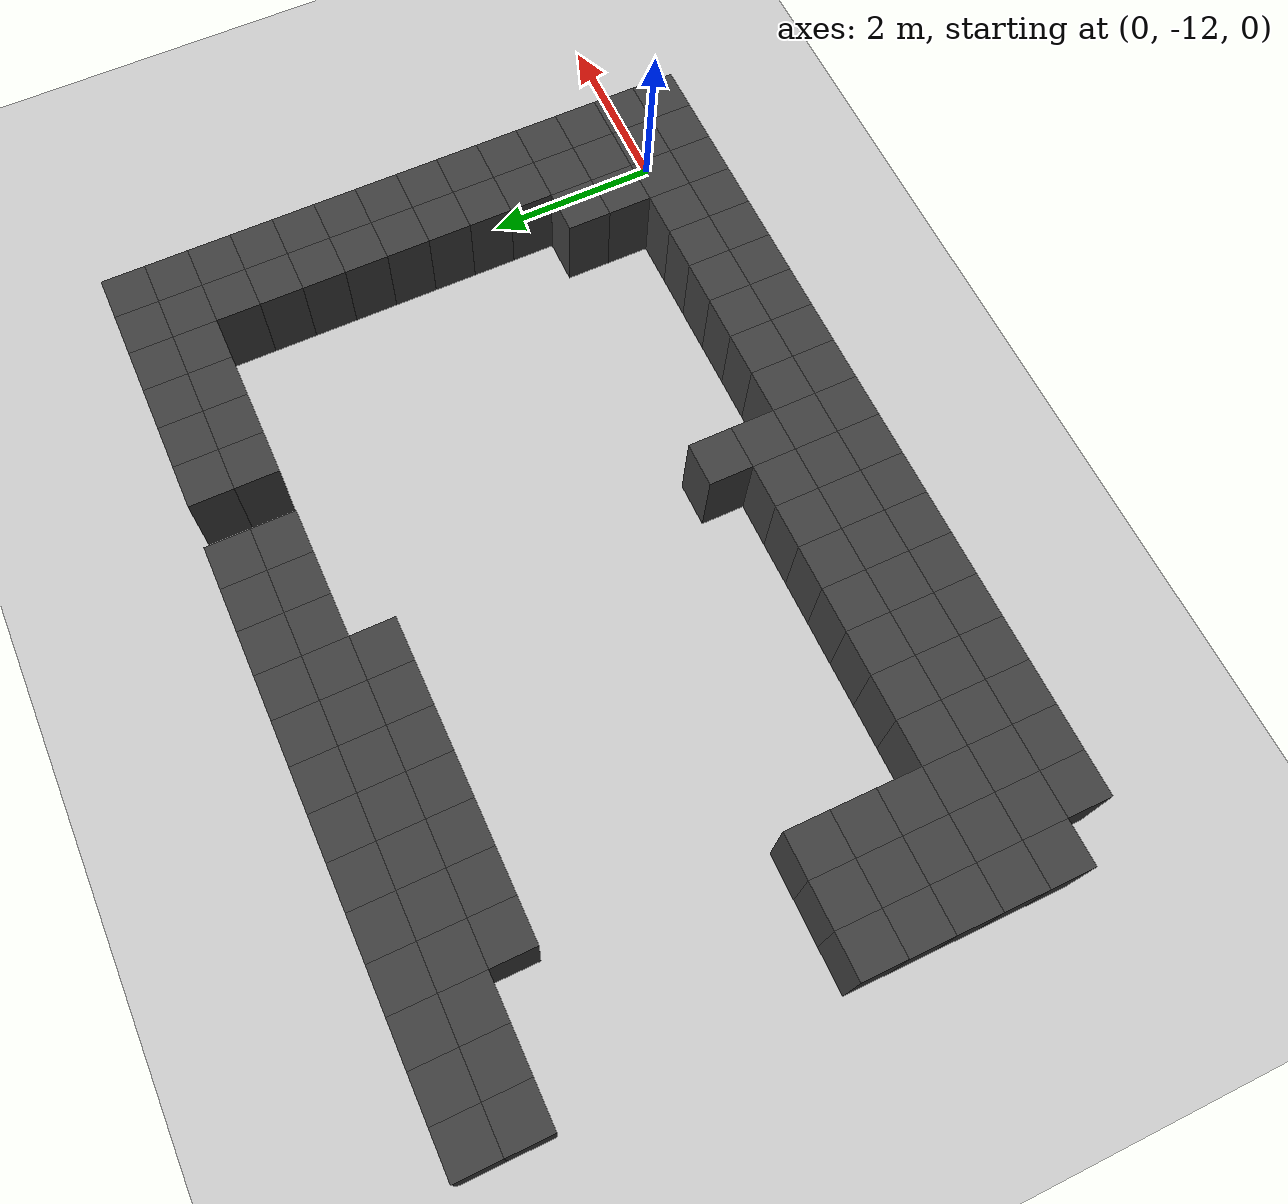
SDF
<sdf version="1.7">
 <world name="map_14980">
  <model name="ground_plane">
   <static>true</static>
   <link name="link">
    <collision name="collision">
     <geometry><plane><normal>0 0 1</normal><size>200 200</size></plane></geometry>
    </collision>
    <visual name="visual">
     <geometry><plane><normal>0 0 1</normal><size>200 200</size></plane></geometry>
     <material><ambient>0.8 0.8 0.8 1</ambient><diffuse>0.8 0.8 0.8 1</diffuse></material>
    </visual>
   </link>
  </model>
  <model name="maze_environment">
   <static>true</static>
   <link name="wall_1320">
    <pose>-9.250 -5.750 0.500 0 0 0</pose>
    <collision name="col"><geometry><box><size>0.5 0.5 1.0</size></box></geometry></collision>
    <visual name="vis">
     <geometry><box><size>0.5 0.5 1.0</size></box></geometry>
     <material><ambient>0.15 0.15 0.15 1</ambient><diffuse>0.25 0.25 0.25 1</diffuse></material>
    </visual>
   </link>
   <link name="wall_1321">
    <pose>-8.750 -5.750 0.500 0 0 0</pose>
    <collision name="col"><geometry><box><size>0.5 0.5 1.0</size></box></geometry></collision>
    <visual name="vis">
     <geometry><box><size>0.5 0.5 1.0</size></box></geometry>
     <material><ambient>0.15 0.15 0.15 1</ambient><diffuse>0.25 0.25 0.25 1</diffuse></material>
    </visual>
   </link>
   <link name="wall_1322">
    <pose>-8.250 -5.750 0.500 0 0 0</pose>
    <collision name="col"><geometry><box><size>0.5 0.5 1.0</size></box></geometry></collision>
    <visual name="vis">
     <geometry><box><size>0.5 0.5 1.0</size></box></geometry>
     <material><ambient>0.15 0.15 0.15 1</ambient><diffuse>0.25 0.25 0.25 1</diffuse></material>
    </visual>
   </link>
   <link name="wall_1323">
    <pose>-7.750 -5.750 0.500 0 0 0</pose>
    <collision name="col"><geometry><box><size>0.5 0.5 1.0</size></box></geometry></collision>
    <visual name="vis">
     <geometry><box><size>0.5 0.5 1.0</size></box></geometry>
     <material><ambient>0.15 0.15 0.15 1</ambient><diffuse>0.25 0.25 0.25 1</diffuse></material>
    </visual>
   </link>
   <link name="wall_1324">
    <pose>-7.250 -5.750 0.500 0 0 0</pose>
    <collision name="col"><geometry><box><size>0.5 0.5 1.0</size></box></geometry></collision>
    <visual name="vis">
     <geometry><box><size>0.5 0.5 1.0</size></box></geometry>
     <material><ambient>0.15 0.15 0.15 1</ambient><diffuse>0.25 0.25 0.25 1</diffuse></material>
    </visual>
   </link>
   <link name="wall_1325">
    <pose>-6.750 -5.750 0.500 0 0 0</pose>
    <collision name="col"><geometry><box><size>0.5 0.5 1.0</size></box></geometry></collision>
    <visual name="vis">
     <geometry><box><size>0.5 0.5 1.0</size></box></geometry>
     <material><ambient>0.15 0.15 0.15 1</ambient><diffuse>0.25 0.25 0.25 1</diffuse></material>
    </visual>
   </link>
   <link name="wall_1326">
    <pose>-6.250 -5.750 0.500 0 0 0</pose>
    <collision name="col"><geometry><box><size>0.5 0.5 1.0</size></box></geometry></collision>
    <visual name="vis">
     <geometry><box><size>0.5 0.5 1.0</size></box></geometry>
     <material><ambient>0.15 0.15 0.15 1</ambient><diffuse>0.25 0.25 0.25 1</diffuse></material>
    </visual>
   </link>
   <link name="wall_1327">
    <pose>-5.750 -5.750 0.500 0 0 0</pose>
    <collision name="col"><geometry><box><size>0.5 0.5 1.0</size></box></geometry></collision>
    <visual name="vis">
     <geometry><box><size>0.5 0.5 1.0</size></box></geometry>
     <material><ambient>0.15 0.15 0.15 1</ambient><diffuse>0.25 0.25 0.25 1</diffuse></material>
    </visual>
   </link>
   <link name="wall_1328">
    <pose>-5.250 -5.750 0.500 0 0 0</pose>
    <collision name="col"><geometry><box><size>0.5 0.5 1.0</size></box></geometry></collision>
    <visual name="vis">
     <geometry><box><size>0.5 0.5 1.0</size></box></geometry>
     <material><ambient>0.15 0.15 0.15 1</ambient><diffuse>0.25 0.25 0.25 1</diffuse></material>
    </visual>
   </link>
   <link name="wall_1329">
    <pose>-4.750 -5.750 0.500 0 0 0</pose>
    <collision name="col"><geometry><box><size>0.5 0.5 1.0</size></box></geometry></collision>
    <visual name="vis">
     <geometry><box><size>0.5 0.5 1.0</size></box></geometry>
     <material><ambient>0.15 0.15 0.15 1</ambient><diffuse>0.25 0.25 0.25 1</diffuse></material>
    </visual>
   </link>
   <link name="wall_1330">
    <pose>-4.250 -5.750 0.500 0 0 0</pose>
    <collision name="col"><geometry><box><size>0.5 0.5 1.0</size></box></geometry></collision>
    <visual name="vis">
     <geometry><box><size>0.5 0.5 1.0</size></box></geometry>
     <material><ambient>0.15 0.15 0.15 1</ambient><diffuse>0.25 0.25 0.25 1</diffuse></material>
    </visual>
   </link>
   <link name="wall_1331">
    <pose>-3.750 -5.750 0.500 0 0 0</pose>
    <collision name="col"><geometry><box><size>0.5 0.5 1.0</size></box></geometry></collision>
    <visual name="vis">
     <geometry><box><size>0.5 0.5 1.0</size></box></geometry>
     <material><ambient>0.15 0.15 0.15 1</ambient><diffuse>0.25 0.25 0.25 1</diffuse></material>
    </visual>
   </link>
   <link name="wall_1332">
    <pose>-3.250 -5.750 0.500 0 0 0</pose>
    <collision name="col"><geometry><box><size>0.5 0.5 1.0</size></box></geometry></collision>
    <visual name="vis">
     <geometry><box><size>0.5 0.5 1.0</size></box></geometry>
     <material><ambient>0.15 0.15 0.15 1</ambient><diffuse>0.25 0.25 0.25 1</diffuse></material>
    </visual>
   </link>
   <link name="wall_1333">
    <pose>-2.250 -5.750 0.500 0 0 0</pose>
    <collision name="col"><geometry><box><size>0.5 0.5 1.0</size></box></geometry></collision>
    <visual name="vis">
     <geometry><box><size>0.5 0.5 1.0</size></box></geometry>
     <material><ambient>0.15 0.15 0.15 1</ambient><diffuse>0.25 0.25 0.25 1</diffuse></material>
    </visual>
   </link>
   <link name="wall_1334">
    <pose>-1.750 -5.750 0.500 0 0 0</pose>
    <collision name="col"><geometry><box><size>0.5 0.5 1.0</size></box></geometry></collision>
    <visual name="vis">
     <geometry><box><size>0.5 0.5 1.0</size></box></geometry>
     <material><ambient>0.15 0.15 0.15 1</ambient><diffuse>0.25 0.25 0.25 1</diffuse></material>
    </visual>
   </link>
   <link name="wall_1335">
    <pose>-1.250 -5.750 0.500 0 0 0</pose>
    <collision name="col"><geometry><box><size>0.5 0.5 1.0</size></box></geometry></collision>
    <visual name="vis">
     <geometry><box><size>0.5 0.5 1.0</size></box></geometry>
     <material><ambient>0.15 0.15 0.15 1</ambient><diffuse>0.25 0.25 0.25 1</diffuse></material>
    </visual>
   </link>
   <link name="wall_1336">
    <pose>-0.750 -5.750 0.500 0 0 0</pose>
    <collision name="col"><geometry><box><size>0.5 0.5 1.0</size></box></geometry></collision>
    <visual name="vis">
     <geometry><box><size>0.5 0.5 1.0</size></box></geometry>
     <material><ambient>0.15 0.15 0.15 1</ambient><diffuse>0.25 0.25 0.25 1</diffuse></material>
    </visual>
   </link>
   <link name="wall_1337">
    <pose>-0.250 -5.750 0.500 0 0 0</pose>
    <collision name="col"><geometry><box><size>0.5 0.5 1.0</size></box></geometry></collision>
    <visual name="vis">
     <geometry><box><size>0.5 0.5 1.0</size></box></geometry>
     <material><ambient>0.15 0.15 0.15 1</ambient><diffuse>0.25 0.25 0.25 1</diffuse></material>
    </visual>
   </link>
   <link name="wall_1338">
    <pose>0.250 -5.750 0.500 0 0 0</pose>
    <collision name="col"><geometry><box><size>0.5 0.5 1.0</size></box></geometry></collision>
    <visual name="vis">
     <geometry><box><size>0.5 0.5 1.0</size></box></geometry>
     <material><ambient>0.15 0.15 0.15 1</ambient><diffuse>0.25 0.25 0.25 1</diffuse></material>
    </visual>
   </link>
   <link name="wall_1364">
    <pose>-9.250 -6.250 0.500 0 0 0</pose>
    <collision name="col"><geometry><box><size>0.5 0.5 1.0</size></box></geometry></collision>
    <visual name="vis">
     <geometry><box><size>0.5 0.5 1.0</size></box></geometry>
     <material><ambient>0.15 0.15 0.15 1</ambient><diffuse>0.25 0.25 0.25 1</diffuse></material>
    </visual>
   </link>
   <link name="wall_1365">
    <pose>-8.750 -6.250 0.500 0 0 0</pose>
    <collision name="col"><geometry><box><size>0.5 0.5 1.0</size></box></geometry></collision>
    <visual name="vis">
     <geometry><box><size>0.5 0.5 1.0</size></box></geometry>
     <material><ambient>0.15 0.15 0.15 1</ambient><diffuse>0.25 0.25 0.25 1</diffuse></material>
    </visual>
   </link>
   <link name="wall_1366">
    <pose>-8.250 -6.250 0.500 0 0 0</pose>
    <collision name="col"><geometry><box><size>0.5 0.5 1.0</size></box></geometry></collision>
    <visual name="vis">
     <geometry><box><size>0.5 0.5 1.0</size></box></geometry>
     <material><ambient>0.15 0.15 0.15 1</ambient><diffuse>0.25 0.25 0.25 1</diffuse></material>
    </visual>
   </link>
   <link name="wall_1367">
    <pose>-7.750 -6.250 0.500 0 0 0</pose>
    <collision name="col"><geometry><box><size>0.5 0.5 1.0</size></box></geometry></collision>
    <visual name="vis">
     <geometry><box><size>0.5 0.5 1.0</size></box></geometry>
     <material><ambient>0.15 0.15 0.15 1</ambient><diffuse>0.25 0.25 0.25 1</diffuse></material>
    </visual>
   </link>
   <link name="wall_1368">
    <pose>-7.250 -6.250 0.500 0 0 0</pose>
    <collision name="col"><geometry><box><size>0.5 0.5 1.0</size></box></geometry></collision>
    <visual name="vis">
     <geometry><box><size>0.5 0.5 1.0</size></box></geometry>
     <material><ambient>0.15 0.15 0.15 1</ambient><diffuse>0.25 0.25 0.25 1</diffuse></material>
    </visual>
   </link>
   <link name="wall_1369">
    <pose>-6.750 -6.250 0.500 0 0 0</pose>
    <collision name="col"><geometry><box><size>0.5 0.5 1.0</size></box></geometry></collision>
    <visual name="vis">
     <geometry><box><size>0.5 0.5 1.0</size></box></geometry>
     <material><ambient>0.15 0.15 0.15 1</ambient><diffuse>0.25 0.25 0.25 1</diffuse></material>
    </visual>
   </link>
   <link name="wall_1370">
    <pose>-6.250 -6.250 0.500 0 0 0</pose>
    <collision name="col"><geometry><box><size>0.5 0.5 1.0</size></box></geometry></collision>
    <visual name="vis">
     <geometry><box><size>0.5 0.5 1.0</size></box></geometry>
     <material><ambient>0.15 0.15 0.15 1</ambient><diffuse>0.25 0.25 0.25 1</diffuse></material>
    </visual>
   </link>
   <link name="wall_1371">
    <pose>-5.750 -6.250 0.500 0 0 0</pose>
    <collision name="col"><geometry><box><size>0.5 0.5 1.0</size></box></geometry></collision>
    <visual name="vis">
     <geometry><box><size>0.5 0.5 1.0</size></box></geometry>
     <material><ambient>0.15 0.15 0.15 1</ambient><diffuse>0.25 0.25 0.25 1</diffuse></material>
    </visual>
   </link>
   <link name="wall_1372">
    <pose>-5.250 -6.250 0.500 0 0 0</pose>
    <collision name="col"><geometry><box><size>0.5 0.5 1.0</size></box></geometry></collision>
    <visual name="vis">
     <geometry><box><size>0.5 0.5 1.0</size></box></geometry>
     <material><ambient>0.15 0.15 0.15 1</ambient><diffuse>0.25 0.25 0.25 1</diffuse></material>
    </visual>
   </link>
   <link name="wall_1373">
    <pose>-4.750 -6.250 0.500 0 0 0</pose>
    <collision name="col"><geometry><box><size>0.5 0.5 1.0</size></box></geometry></collision>
    <visual name="vis">
     <geometry><box><size>0.5 0.5 1.0</size></box></geometry>
     <material><ambient>0.15 0.15 0.15 1</ambient><diffuse>0.25 0.25 0.25 1</diffuse></material>
    </visual>
   </link>
   <link name="wall_1374">
    <pose>-4.250 -6.250 0.500 0 0 0</pose>
    <collision name="col"><geometry><box><size>0.5 0.5 1.0</size></box></geometry></collision>
    <visual name="vis">
     <geometry><box><size>0.5 0.5 1.0</size></box></geometry>
     <material><ambient>0.15 0.15 0.15 1</ambient><diffuse>0.25 0.25 0.25 1</diffuse></material>
    </visual>
   </link>
   <link name="wall_1375">
    <pose>-3.750 -6.250 0.500 0 0 0</pose>
    <collision name="col"><geometry><box><size>0.5 0.5 1.0</size></box></geometry></collision>
    <visual name="vis">
     <geometry><box><size>0.5 0.5 1.0</size></box></geometry>
     <material><ambient>0.15 0.15 0.15 1</ambient><diffuse>0.25 0.25 0.25 1</diffuse></material>
    </visual>
   </link>
   <link name="wall_1376">
    <pose>-3.250 -6.250 0.500 0 0 0</pose>
    <collision name="col"><geometry><box><size>0.5 0.5 1.0</size></box></geometry></collision>
    <visual name="vis">
     <geometry><box><size>0.5 0.5 1.0</size></box></geometry>
     <material><ambient>0.15 0.15 0.15 1</ambient><diffuse>0.25 0.25 0.25 1</diffuse></material>
    </visual>
   </link>
   <link name="wall_1377">
    <pose>-2.250 -6.250 0.500 0 0 0</pose>
    <collision name="col"><geometry><box><size>0.5 0.5 1.0</size></box></geometry></collision>
    <visual name="vis">
     <geometry><box><size>0.5 0.5 1.0</size></box></geometry>
     <material><ambient>0.15 0.15 0.15 1</ambient><diffuse>0.25 0.25 0.25 1</diffuse></material>
    </visual>
   </link>
   <link name="wall_1378">
    <pose>-1.750 -6.250 0.500 0 0 0</pose>
    <collision name="col"><geometry><box><size>0.5 0.5 1.0</size></box></geometry></collision>
    <visual name="vis">
     <geometry><box><size>0.5 0.5 1.0</size></box></geometry>
     <material><ambient>0.15 0.15 0.15 1</ambient><diffuse>0.25 0.25 0.25 1</diffuse></material>
    </visual>
   </link>
   <link name="wall_1379">
    <pose>-1.250 -6.250 0.500 0 0 0</pose>
    <collision name="col"><geometry><box><size>0.5 0.5 1.0</size></box></geometry></collision>
    <visual name="vis">
     <geometry><box><size>0.5 0.5 1.0</size></box></geometry>
     <material><ambient>0.15 0.15 0.15 1</ambient><diffuse>0.25 0.25 0.25 1</diffuse></material>
    </visual>
   </link>
   <link name="wall_1380">
    <pose>-0.750 -6.250 0.500 0 0 0</pose>
    <collision name="col"><geometry><box><size>0.5 0.5 1.0</size></box></geometry></collision>
    <visual name="vis">
     <geometry><box><size>0.5 0.5 1.0</size></box></geometry>
     <material><ambient>0.15 0.15 0.15 1</ambient><diffuse>0.25 0.25 0.25 1</diffuse></material>
    </visual>
   </link>
   <link name="wall_1381">
    <pose>-0.250 -6.250 0.500 0 0 0</pose>
    <collision name="col"><geometry><box><size>0.5 0.5 1.0</size></box></geometry></collision>
    <visual name="vis">
     <geometry><box><size>0.5 0.5 1.0</size></box></geometry>
     <material><ambient>0.15 0.15 0.15 1</ambient><diffuse>0.25 0.25 0.25 1</diffuse></material>
    </visual>
   </link>
   <link name="wall_1382">
    <pose>0.250 -6.250 0.500 0 0 0</pose>
    <collision name="col"><geometry><box><size>0.5 0.5 1.0</size></box></geometry></collision>
    <visual name="vis">
     <geometry><box><size>0.5 0.5 1.0</size></box></geometry>
     <material><ambient>0.15 0.15 0.15 1</ambient><diffuse>0.25 0.25 0.25 1</diffuse></material>
    </visual>
   </link>
   <link name="wall_1407">
    <pose>-7.750 -6.750 0.500 0 0 0</pose>
    <collision name="col"><geometry><box><size>0.5 0.5 1.0</size></box></geometry></collision>
    <visual name="vis">
     <geometry><box><size>0.5 0.5 1.0</size></box></geometry>
     <material><ambient>0.15 0.15 0.15 1</ambient><diffuse>0.25 0.25 0.25 1</diffuse></material>
    </visual>
   </link>
   <link name="wall_1408">
    <pose>-7.250 -6.750 0.500 0 0 0</pose>
    <collision name="col"><geometry><box><size>0.5 0.5 1.0</size></box></geometry></collision>
    <visual name="vis">
     <geometry><box><size>0.5 0.5 1.0</size></box></geometry>
     <material><ambient>0.15 0.15 0.15 1</ambient><diffuse>0.25 0.25 0.25 1</diffuse></material>
    </visual>
   </link>
   <link name="wall_1409">
    <pose>-6.750 -6.750 0.500 0 0 0</pose>
    <collision name="col"><geometry><box><size>0.5 0.5 1.0</size></box></geometry></collision>
    <visual name="vis">
     <geometry><box><size>0.5 0.5 1.0</size></box></geometry>
     <material><ambient>0.15 0.15 0.15 1</ambient><diffuse>0.25 0.25 0.25 1</diffuse></material>
    </visual>
   </link>
   <link name="wall_1410">
    <pose>-6.250 -6.750 0.500 0 0 0</pose>
    <collision name="col"><geometry><box><size>0.5 0.5 1.0</size></box></geometry></collision>
    <visual name="vis">
     <geometry><box><size>0.5 0.5 1.0</size></box></geometry>
     <material><ambient>0.15 0.15 0.15 1</ambient><diffuse>0.25 0.25 0.25 1</diffuse></material>
    </visual>
   </link>
   <link name="wall_1411">
    <pose>-5.750 -6.750 0.500 0 0 0</pose>
    <collision name="col"><geometry><box><size>0.5 0.5 1.0</size></box></geometry></collision>
    <visual name="vis">
     <geometry><box><size>0.5 0.5 1.0</size></box></geometry>
     <material><ambient>0.15 0.15 0.15 1</ambient><diffuse>0.25 0.25 0.25 1</diffuse></material>
    </visual>
   </link>
   <link name="wall_1412">
    <pose>-5.250 -6.750 0.500 0 0 0</pose>
    <collision name="col"><geometry><box><size>0.5 0.5 1.0</size></box></geometry></collision>
    <visual name="vis">
     <geometry><box><size>0.5 0.5 1.0</size></box></geometry>
     <material><ambient>0.15 0.15 0.15 1</ambient><diffuse>0.25 0.25 0.25 1</diffuse></material>
    </visual>
   </link>
   <link name="wall_1413">
    <pose>-4.750 -6.750 0.500 0 0 0</pose>
    <collision name="col"><geometry><box><size>0.5 0.5 1.0</size></box></geometry></collision>
    <visual name="vis">
     <geometry><box><size>0.5 0.5 1.0</size></box></geometry>
     <material><ambient>0.15 0.15 0.15 1</ambient><diffuse>0.25 0.25 0.25 1</diffuse></material>
    </visual>
   </link>
   <link name="wall_1414">
    <pose>-0.250 -6.750 0.500 0 0 0</pose>
    <collision name="col"><geometry><box><size>0.5 0.5 1.0</size></box></geometry></collision>
    <visual name="vis">
     <geometry><box><size>0.5 0.5 1.0</size></box></geometry>
     <material><ambient>0.15 0.15 0.15 1</ambient><diffuse>0.25 0.25 0.25 1</diffuse></material>
    </visual>
   </link>
   <link name="wall_1415">
    <pose>0.250 -6.750 0.500 0 0 0</pose>
    <collision name="col"><geometry><box><size>0.5 0.5 1.0</size></box></geometry></collision>
    <visual name="vis">
     <geometry><box><size>0.5 0.5 1.0</size></box></geometry>
     <material><ambient>0.15 0.15 0.15 1</ambient><diffuse>0.25 0.25 0.25 1</diffuse></material>
    </visual>
   </link>
   <link name="wall_1440">
    <pose>-0.250 -7.250 0.500 0 0 0</pose>
    <collision name="col"><geometry><box><size>0.5 0.5 1.0</size></box></geometry></collision>
    <visual name="vis">
     <geometry><box><size>0.5 0.5 1.0</size></box></geometry>
     <material><ambient>0.15 0.15 0.15 1</ambient><diffuse>0.25 0.25 0.25 1</diffuse></material>
    </visual>
   </link>
   <link name="wall_1441">
    <pose>0.250 -7.250 0.500 0 0 0</pose>
    <collision name="col"><geometry><box><size>0.5 0.5 1.0</size></box></geometry></collision>
    <visual name="vis">
     <geometry><box><size>0.5 0.5 1.0</size></box></geometry>
     <material><ambient>0.15 0.15 0.15 1</ambient><diffuse>0.25 0.25 0.25 1</diffuse></material>
    </visual>
   </link>
   <link name="wall_1464">
    <pose>-0.250 -7.750 0.500 0 0 0</pose>
    <collision name="col"><geometry><box><size>0.5 0.5 1.0</size></box></geometry></collision>
    <visual name="vis">
     <geometry><box><size>0.5 0.5 1.0</size></box></geometry>
     <material><ambient>0.15 0.15 0.15 1</ambient><diffuse>0.25 0.25 0.25 1</diffuse></material>
    </visual>
   </link>
   <link name="wall_1465">
    <pose>0.250 -7.750 0.500 0 0 0</pose>
    <collision name="col"><geometry><box><size>0.5 0.5 1.0</size></box></geometry></collision>
    <visual name="vis">
     <geometry><box><size>0.5 0.5 1.0</size></box></geometry>
     <material><ambient>0.15 0.15 0.15 1</ambient><diffuse>0.25 0.25 0.25 1</diffuse></material>
    </visual>
   </link>
   <link name="wall_1488">
    <pose>-0.250 -8.250 0.500 0 0 0</pose>
    <collision name="col"><geometry><box><size>0.5 0.5 1.0</size></box></geometry></collision>
    <visual name="vis">
     <geometry><box><size>0.5 0.5 1.0</size></box></geometry>
     <material><ambient>0.15 0.15 0.15 1</ambient><diffuse>0.25 0.25 0.25 1</diffuse></material>
    </visual>
   </link>
   <link name="wall_1489">
    <pose>0.250 -8.250 0.500 0 0 0</pose>
    <collision name="col"><geometry><box><size>0.5 0.5 1.0</size></box></geometry></collision>
    <visual name="vis">
     <geometry><box><size>0.5 0.5 1.0</size></box></geometry>
     <material><ambient>0.15 0.15 0.15 1</ambient><diffuse>0.25 0.25 0.25 1</diffuse></material>
    </visual>
   </link>
   <link name="wall_1512">
    <pose>-0.250 -8.750 0.500 0 0 0</pose>
    <collision name="col"><geometry><box><size>0.5 0.5 1.0</size></box></geometry></collision>
    <visual name="vis">
     <geometry><box><size>0.5 0.5 1.0</size></box></geometry>
     <material><ambient>0.15 0.15 0.15 1</ambient><diffuse>0.25 0.25 0.25 1</diffuse></material>
    </visual>
   </link>
   <link name="wall_1513">
    <pose>0.250 -8.750 0.500 0 0 0</pose>
    <collision name="col"><geometry><box><size>0.5 0.5 1.0</size></box></geometry></collision>
    <visual name="vis">
     <geometry><box><size>0.5 0.5 1.0</size></box></geometry>
     <material><ambient>0.15 0.15 0.15 1</ambient><diffuse>0.25 0.25 0.25 1</diffuse></material>
    </visual>
   </link>
   <link name="wall_1538">
    <pose>-0.250 -9.250 0.500 0 0 0</pose>
    <collision name="col"><geometry><box><size>0.5 0.5 1.0</size></box></geometry></collision>
    <visual name="vis">
     <geometry><box><size>0.5 0.5 1.0</size></box></geometry>
     <material><ambient>0.15 0.15 0.15 1</ambient><diffuse>0.25 0.25 0.25 1</diffuse></material>
    </visual>
   </link>
   <link name="wall_1539">
    <pose>0.250 -9.250 0.500 0 0 0</pose>
    <collision name="col"><geometry><box><size>0.5 0.5 1.0</size></box></geometry></collision>
    <visual name="vis">
     <geometry><box><size>0.5 0.5 1.0</size></box></geometry>
     <material><ambient>0.15 0.15 0.15 1</ambient><diffuse>0.25 0.25 0.25 1</diffuse></material>
    </visual>
   </link>
   <link name="wall_1566">
    <pose>-9.250 -9.750 0.500 0 0 0</pose>
    <collision name="col"><geometry><box><size>0.5 0.5 1.0</size></box></geometry></collision>
    <visual name="vis">
     <geometry><box><size>0.5 0.5 1.0</size></box></geometry>
     <material><ambient>0.15 0.15 0.15 1</ambient><diffuse>0.25 0.25 0.25 1</diffuse></material>
    </visual>
   </link>
   <link name="wall_1567">
    <pose>-8.750 -9.750 0.500 0 0 0</pose>
    <collision name="col"><geometry><box><size>0.5 0.5 1.0</size></box></geometry></collision>
    <visual name="vis">
     <geometry><box><size>0.5 0.5 1.0</size></box></geometry>
     <material><ambient>0.15 0.15 0.15 1</ambient><diffuse>0.25 0.25 0.25 1</diffuse></material>
    </visual>
   </link>
   <link name="wall_1568">
    <pose>-8.250 -9.750 0.500 0 0 0</pose>
    <collision name="col"><geometry><box><size>0.5 0.5 1.0</size></box></geometry></collision>
    <visual name="vis">
     <geometry><box><size>0.5 0.5 1.0</size></box></geometry>
     <material><ambient>0.15 0.15 0.15 1</ambient><diffuse>0.25 0.25 0.25 1</diffuse></material>
    </visual>
   </link>
   <link name="wall_1569">
    <pose>-0.250 -9.750 0.500 0 0 0</pose>
    <collision name="col"><geometry><box><size>0.5 0.5 1.0</size></box></geometry></collision>
    <visual name="vis">
     <geometry><box><size>0.5 0.5 1.0</size></box></geometry>
     <material><ambient>0.15 0.15 0.15 1</ambient><diffuse>0.25 0.25 0.25 1</diffuse></material>
    </visual>
   </link>
   <link name="wall_1570">
    <pose>0.250 -9.750 0.500 0 0 0</pose>
    <collision name="col"><geometry><box><size>0.5 0.5 1.0</size></box></geometry></collision>
    <visual name="vis">
     <geometry><box><size>0.5 0.5 1.0</size></box></geometry>
     <material><ambient>0.15 0.15 0.15 1</ambient><diffuse>0.25 0.25 0.25 1</diffuse></material>
    </visual>
   </link>
   <link name="wall_1597">
    <pose>-9.250 -10.250 0.500 0 0 0</pose>
    <collision name="col"><geometry><box><size>0.5 0.5 1.0</size></box></geometry></collision>
    <visual name="vis">
     <geometry><box><size>0.5 0.5 1.0</size></box></geometry>
     <material><ambient>0.15 0.15 0.15 1</ambient><diffuse>0.25 0.25 0.25 1</diffuse></material>
    </visual>
   </link>
   <link name="wall_1598">
    <pose>-8.750 -10.250 0.500 0 0 0</pose>
    <collision name="col"><geometry><box><size>0.5 0.5 1.0</size></box></geometry></collision>
    <visual name="vis">
     <geometry><box><size>0.5 0.5 1.0</size></box></geometry>
     <material><ambient>0.15 0.15 0.15 1</ambient><diffuse>0.25 0.25 0.25 1</diffuse></material>
    </visual>
   </link>
   <link name="wall_1599">
    <pose>-8.250 -10.250 0.500 0 0 0</pose>
    <collision name="col"><geometry><box><size>0.5 0.5 1.0</size></box></geometry></collision>
    <visual name="vis">
     <geometry><box><size>0.5 0.5 1.0</size></box></geometry>
     <material><ambient>0.15 0.15 0.15 1</ambient><diffuse>0.25 0.25 0.25 1</diffuse></material>
    </visual>
   </link>
   <link name="wall_1600">
    <pose>-0.250 -10.250 0.500 0 0 0</pose>
    <collision name="col"><geometry><box><size>0.5 0.5 1.0</size></box></geometry></collision>
    <visual name="vis">
     <geometry><box><size>0.5 0.5 1.0</size></box></geometry>
     <material><ambient>0.15 0.15 0.15 1</ambient><diffuse>0.25 0.25 0.25 1</diffuse></material>
    </visual>
   </link>
   <link name="wall_1601">
    <pose>0.250 -10.250 0.500 0 0 0</pose>
    <collision name="col"><geometry><box><size>0.5 0.5 1.0</size></box></geometry></collision>
    <visual name="vis">
     <geometry><box><size>0.5 0.5 1.0</size></box></geometry>
     <material><ambient>0.15 0.15 0.15 1</ambient><diffuse>0.25 0.25 0.25 1</diffuse></material>
    </visual>
   </link>
   <link name="wall_1628">
    <pose>-9.250 -10.750 0.500 0 0 0</pose>
    <collision name="col"><geometry><box><size>0.5 0.5 1.0</size></box></geometry></collision>
    <visual name="vis">
     <geometry><box><size>0.5 0.5 1.0</size></box></geometry>
     <material><ambient>0.15 0.15 0.15 1</ambient><diffuse>0.25 0.25 0.25 1</diffuse></material>
    </visual>
   </link>
   <link name="wall_1629">
    <pose>-8.750 -10.750 0.500 0 0 0</pose>
    <collision name="col"><geometry><box><size>0.5 0.5 1.0</size></box></geometry></collision>
    <visual name="vis">
     <geometry><box><size>0.5 0.5 1.0</size></box></geometry>
     <material><ambient>0.15 0.15 0.15 1</ambient><diffuse>0.25 0.25 0.25 1</diffuse></material>
    </visual>
   </link>
   <link name="wall_1630">
    <pose>-8.250 -10.750 0.500 0 0 0</pose>
    <collision name="col"><geometry><box><size>0.5 0.5 1.0</size></box></geometry></collision>
    <visual name="vis">
     <geometry><box><size>0.5 0.5 1.0</size></box></geometry>
     <material><ambient>0.15 0.15 0.15 1</ambient><diffuse>0.25 0.25 0.25 1</diffuse></material>
    </visual>
   </link>
   <link name="wall_1631">
    <pose>-4.250 -10.750 0.500 0 0 0</pose>
    <collision name="col"><geometry><box><size>0.5 0.5 1.0</size></box></geometry></collision>
    <visual name="vis">
     <geometry><box><size>0.5 0.5 1.0</size></box></geometry>
     <material><ambient>0.15 0.15 0.15 1</ambient><diffuse>0.25 0.25 0.25 1</diffuse></material>
    </visual>
   </link>
   <link name="wall_1632">
    <pose>-0.750 -10.750 0.500 0 0 0</pose>
    <collision name="col"><geometry><box><size>0.5 0.5 1.0</size></box></geometry></collision>
    <visual name="vis">
     <geometry><box><size>0.5 0.5 1.0</size></box></geometry>
     <material><ambient>0.15 0.15 0.15 1</ambient><diffuse>0.25 0.25 0.25 1</diffuse></material>
    </visual>
   </link>
   <link name="wall_1633">
    <pose>-0.250 -10.750 0.500 0 0 0</pose>
    <collision name="col"><geometry><box><size>0.5 0.5 1.0</size></box></geometry></collision>
    <visual name="vis">
     <geometry><box><size>0.5 0.5 1.0</size></box></geometry>
     <material><ambient>0.15 0.15 0.15 1</ambient><diffuse>0.25 0.25 0.25 1</diffuse></material>
    </visual>
   </link>
   <link name="wall_1634">
    <pose>0.250 -10.750 0.500 0 0 0</pose>
    <collision name="col"><geometry><box><size>0.5 0.5 1.0</size></box></geometry></collision>
    <visual name="vis">
     <geometry><box><size>0.5 0.5 1.0</size></box></geometry>
     <material><ambient>0.15 0.15 0.15 1</ambient><diffuse>0.25 0.25 0.25 1</diffuse></material>
    </visual>
   </link>
   <link name="wall_1661">
    <pose>-9.250 -11.250 0.500 0 0 0</pose>
    <collision name="col"><geometry><box><size>0.5 0.5 1.0</size></box></geometry></collision>
    <visual name="vis">
     <geometry><box><size>0.5 0.5 1.0</size></box></geometry>
     <material><ambient>0.15 0.15 0.15 1</ambient><diffuse>0.25 0.25 0.25 1</diffuse></material>
    </visual>
   </link>
   <link name="wall_1662">
    <pose>-8.750 -11.250 0.500 0 0 0</pose>
    <collision name="col"><geometry><box><size>0.5 0.5 1.0</size></box></geometry></collision>
    <visual name="vis">
     <geometry><box><size>0.5 0.5 1.0</size></box></geometry>
     <material><ambient>0.15 0.15 0.15 1</ambient><diffuse>0.25 0.25 0.25 1</diffuse></material>
    </visual>
   </link>
   <link name="wall_1663">
    <pose>-8.250 -11.250 0.500 0 0 0</pose>
    <collision name="col"><geometry><box><size>0.5 0.5 1.0</size></box></geometry></collision>
    <visual name="vis">
     <geometry><box><size>0.5 0.5 1.0</size></box></geometry>
     <material><ambient>0.15 0.15 0.15 1</ambient><diffuse>0.25 0.25 0.25 1</diffuse></material>
    </visual>
   </link>
   <link name="wall_1664">
    <pose>-7.750 -11.250 0.500 0 0 0</pose>
    <collision name="col"><geometry><box><size>0.5 0.5 1.0</size></box></geometry></collision>
    <visual name="vis">
     <geometry><box><size>0.5 0.5 1.0</size></box></geometry>
     <material><ambient>0.15 0.15 0.15 1</ambient><diffuse>0.25 0.25 0.25 1</diffuse></material>
    </visual>
   </link>
   <link name="wall_1665">
    <pose>-7.250 -11.250 0.500 0 0 0</pose>
    <collision name="col"><geometry><box><size>0.5 0.5 1.0</size></box></geometry></collision>
    <visual name="vis">
     <geometry><box><size>0.5 0.5 1.0</size></box></geometry>
     <material><ambient>0.15 0.15 0.15 1</ambient><diffuse>0.25 0.25 0.25 1</diffuse></material>
    </visual>
   </link>
   <link name="wall_1666">
    <pose>-6.750 -11.250 0.500 0 0 0</pose>
    <collision name="col"><geometry><box><size>0.5 0.5 1.0</size></box></geometry></collision>
    <visual name="vis">
     <geometry><box><size>0.5 0.5 1.0</size></box></geometry>
     <material><ambient>0.15 0.15 0.15 1</ambient><diffuse>0.25 0.25 0.25 1</diffuse></material>
    </visual>
   </link>
   <link name="wall_1667">
    <pose>-6.250 -11.250 0.500 0 0 0</pose>
    <collision name="col"><geometry><box><size>0.5 0.5 1.0</size></box></geometry></collision>
    <visual name="vis">
     <geometry><box><size>0.5 0.5 1.0</size></box></geometry>
     <material><ambient>0.15 0.15 0.15 1</ambient><diffuse>0.25 0.25 0.25 1</diffuse></material>
    </visual>
   </link>
   <link name="wall_1668">
    <pose>-5.750 -11.250 0.500 0 0 0</pose>
    <collision name="col"><geometry><box><size>0.5 0.5 1.0</size></box></geometry></collision>
    <visual name="vis">
     <geometry><box><size>0.5 0.5 1.0</size></box></geometry>
     <material><ambient>0.15 0.15 0.15 1</ambient><diffuse>0.25 0.25 0.25 1</diffuse></material>
    </visual>
   </link>
   <link name="wall_1669">
    <pose>-5.250 -11.250 0.500 0 0 0</pose>
    <collision name="col"><geometry><box><size>0.5 0.5 1.0</size></box></geometry></collision>
    <visual name="vis">
     <geometry><box><size>0.5 0.5 1.0</size></box></geometry>
     <material><ambient>0.15 0.15 0.15 1</ambient><diffuse>0.25 0.25 0.25 1</diffuse></material>
    </visual>
   </link>
   <link name="wall_1670">
    <pose>-4.750 -11.250 0.500 0 0 0</pose>
    <collision name="col"><geometry><box><size>0.5 0.5 1.0</size></box></geometry></collision>
    <visual name="vis">
     <geometry><box><size>0.5 0.5 1.0</size></box></geometry>
     <material><ambient>0.15 0.15 0.15 1</ambient><diffuse>0.25 0.25 0.25 1</diffuse></material>
    </visual>
   </link>
   <link name="wall_1671">
    <pose>-4.250 -11.250 0.500 0 0 0</pose>
    <collision name="col"><geometry><box><size>0.5 0.5 1.0</size></box></geometry></collision>
    <visual name="vis">
     <geometry><box><size>0.5 0.5 1.0</size></box></geometry>
     <material><ambient>0.15 0.15 0.15 1</ambient><diffuse>0.25 0.25 0.25 1</diffuse></material>
    </visual>
   </link>
   <link name="wall_1672">
    <pose>-0.750 -11.250 0.500 0 0 0</pose>
    <collision name="col"><geometry><box><size>0.5 0.5 1.0</size></box></geometry></collision>
    <visual name="vis">
     <geometry><box><size>0.5 0.5 1.0</size></box></geometry>
     <material><ambient>0.15 0.15 0.15 1</ambient><diffuse>0.25 0.25 0.25 1</diffuse></material>
    </visual>
   </link>
   <link name="wall_1673">
    <pose>-0.250 -11.250 0.500 0 0 0</pose>
    <collision name="col"><geometry><box><size>0.5 0.5 1.0</size></box></geometry></collision>
    <visual name="vis">
     <geometry><box><size>0.5 0.5 1.0</size></box></geometry>
     <material><ambient>0.15 0.15 0.15 1</ambient><diffuse>0.25 0.25 0.25 1</diffuse></material>
    </visual>
   </link>
   <link name="wall_1674">
    <pose>0.250 -11.250 0.500 0 0 0</pose>
    <collision name="col"><geometry><box><size>0.5 0.5 1.0</size></box></geometry></collision>
    <visual name="vis">
     <geometry><box><size>0.5 0.5 1.0</size></box></geometry>
     <material><ambient>0.15 0.15 0.15 1</ambient><diffuse>0.25 0.25 0.25 1</diffuse></material>
    </visual>
   </link>
   <link name="wall_1697">
    <pose>-9.250 -11.750 0.500 0 0 0</pose>
    <collision name="col"><geometry><box><size>0.5 0.5 1.0</size></box></geometry></collision>
    <visual name="vis">
     <geometry><box><size>0.5 0.5 1.0</size></box></geometry>
     <material><ambient>0.15 0.15 0.15 1</ambient><diffuse>0.25 0.25 0.25 1</diffuse></material>
    </visual>
   </link>
   <link name="wall_1698">
    <pose>-8.750 -11.750 0.500 0 0 0</pose>
    <collision name="col"><geometry><box><size>0.5 0.5 1.0</size></box></geometry></collision>
    <visual name="vis">
     <geometry><box><size>0.5 0.5 1.0</size></box></geometry>
     <material><ambient>0.15 0.15 0.15 1</ambient><diffuse>0.25 0.25 0.25 1</diffuse></material>
    </visual>
   </link>
   <link name="wall_1699">
    <pose>-8.250 -11.750 0.500 0 0 0</pose>
    <collision name="col"><geometry><box><size>0.5 0.5 1.0</size></box></geometry></collision>
    <visual name="vis">
     <geometry><box><size>0.5 0.5 1.0</size></box></geometry>
     <material><ambient>0.15 0.15 0.15 1</ambient><diffuse>0.25 0.25 0.25 1</diffuse></material>
    </visual>
   </link>
   <link name="wall_1700">
    <pose>-7.750 -11.750 0.500 0 0 0</pose>
    <collision name="col"><geometry><box><size>0.5 0.5 1.0</size></box></geometry></collision>
    <visual name="vis">
     <geometry><box><size>0.5 0.5 1.0</size></box></geometry>
     <material><ambient>0.15 0.15 0.15 1</ambient><diffuse>0.25 0.25 0.25 1</diffuse></material>
    </visual>
   </link>
   <link name="wall_1701">
    <pose>-7.250 -11.750 0.500 0 0 0</pose>
    <collision name="col"><geometry><box><size>0.5 0.5 1.0</size></box></geometry></collision>
    <visual name="vis">
     <geometry><box><size>0.5 0.5 1.0</size></box></geometry>
     <material><ambient>0.15 0.15 0.15 1</ambient><diffuse>0.25 0.25 0.25 1</diffuse></material>
    </visual>
   </link>
   <link name="wall_1702">
    <pose>-6.750 -11.750 0.500 0 0 0</pose>
    <collision name="col"><geometry><box><size>0.5 0.5 1.0</size></box></geometry></collision>
    <visual name="vis">
     <geometry><box><size>0.5 0.5 1.0</size></box></geometry>
     <material><ambient>0.15 0.15 0.15 1</ambient><diffuse>0.25 0.25 0.25 1</diffuse></material>
    </visual>
   </link>
   <link name="wall_1703">
    <pose>-6.250 -11.750 0.500 0 0 0</pose>
    <collision name="col"><geometry><box><size>0.5 0.5 1.0</size></box></geometry></collision>
    <visual name="vis">
     <geometry><box><size>0.5 0.5 1.0</size></box></geometry>
     <material><ambient>0.15 0.15 0.15 1</ambient><diffuse>0.25 0.25 0.25 1</diffuse></material>
    </visual>
   </link>
   <link name="wall_1704">
    <pose>-5.750 -11.750 0.500 0 0 0</pose>
    <collision name="col"><geometry><box><size>0.5 0.5 1.0</size></box></geometry></collision>
    <visual name="vis">
     <geometry><box><size>0.5 0.5 1.0</size></box></geometry>
     <material><ambient>0.15 0.15 0.15 1</ambient><diffuse>0.25 0.25 0.25 1</diffuse></material>
    </visual>
   </link>
   <link name="wall_1705">
    <pose>-5.250 -11.750 0.500 0 0 0</pose>
    <collision name="col"><geometry><box><size>0.5 0.5 1.0</size></box></geometry></collision>
    <visual name="vis">
     <geometry><box><size>0.5 0.5 1.0</size></box></geometry>
     <material><ambient>0.15 0.15 0.15 1</ambient><diffuse>0.25 0.25 0.25 1</diffuse></material>
    </visual>
   </link>
   <link name="wall_1706">
    <pose>-4.750 -11.750 0.500 0 0 0</pose>
    <collision name="col"><geometry><box><size>0.5 0.5 1.0</size></box></geometry></collision>
    <visual name="vis">
     <geometry><box><size>0.5 0.5 1.0</size></box></geometry>
     <material><ambient>0.15 0.15 0.15 1</ambient><diffuse>0.25 0.25 0.25 1</diffuse></material>
    </visual>
   </link>
   <link name="wall_1707">
    <pose>-4.250 -11.750 0.500 0 0 0</pose>
    <collision name="col"><geometry><box><size>0.5 0.5 1.0</size></box></geometry></collision>
    <visual name="vis">
     <geometry><box><size>0.5 0.5 1.0</size></box></geometry>
     <material><ambient>0.15 0.15 0.15 1</ambient><diffuse>0.25 0.25 0.25 1</diffuse></material>
    </visual>
   </link>
   <link name="wall_1708">
    <pose>-3.750 -11.750 0.500 0 0 0</pose>
    <collision name="col"><geometry><box><size>0.5 0.5 1.0</size></box></geometry></collision>
    <visual name="vis">
     <geometry><box><size>0.5 0.5 1.0</size></box></geometry>
     <material><ambient>0.15 0.15 0.15 1</ambient><diffuse>0.25 0.25 0.25 1</diffuse></material>
    </visual>
   </link>
   <link name="wall_1709">
    <pose>-3.250 -11.750 0.500 0 0 0</pose>
    <collision name="col"><geometry><box><size>0.5 0.5 1.0</size></box></geometry></collision>
    <visual name="vis">
     <geometry><box><size>0.5 0.5 1.0</size></box></geometry>
     <material><ambient>0.15 0.15 0.15 1</ambient><diffuse>0.25 0.25 0.25 1</diffuse></material>
    </visual>
   </link>
   <link name="wall_1710">
    <pose>-2.750 -11.750 0.500 0 0 0</pose>
    <collision name="col"><geometry><box><size>0.5 0.5 1.0</size></box></geometry></collision>
    <visual name="vis">
     <geometry><box><size>0.5 0.5 1.0</size></box></geometry>
     <material><ambient>0.15 0.15 0.15 1</ambient><diffuse>0.25 0.25 0.25 1</diffuse></material>
    </visual>
   </link>
   <link name="wall_1711">
    <pose>-2.250 -11.750 0.500 0 0 0</pose>
    <collision name="col"><geometry><box><size>0.5 0.5 1.0</size></box></geometry></collision>
    <visual name="vis">
     <geometry><box><size>0.5 0.5 1.0</size></box></geometry>
     <material><ambient>0.15 0.15 0.15 1</ambient><diffuse>0.25 0.25 0.25 1</diffuse></material>
    </visual>
   </link>
   <link name="wall_1712">
    <pose>-1.750 -11.750 0.500 0 0 0</pose>
    <collision name="col"><geometry><box><size>0.5 0.5 1.0</size></box></geometry></collision>
    <visual name="vis">
     <geometry><box><size>0.5 0.5 1.0</size></box></geometry>
     <material><ambient>0.15 0.15 0.15 1</ambient><diffuse>0.25 0.25 0.25 1</diffuse></material>
    </visual>
   </link>
   <link name="wall_1713">
    <pose>-1.250 -11.750 0.500 0 0 0</pose>
    <collision name="col"><geometry><box><size>0.5 0.5 1.0</size></box></geometry></collision>
    <visual name="vis">
     <geometry><box><size>0.5 0.5 1.0</size></box></geometry>
     <material><ambient>0.15 0.15 0.15 1</ambient><diffuse>0.25 0.25 0.25 1</diffuse></material>
    </visual>
   </link>
   <link name="wall_1714">
    <pose>-0.750 -11.750 0.500 0 0 0</pose>
    <collision name="col"><geometry><box><size>0.5 0.5 1.0</size></box></geometry></collision>
    <visual name="vis">
     <geometry><box><size>0.5 0.5 1.0</size></box></geometry>
     <material><ambient>0.15 0.15 0.15 1</ambient><diffuse>0.25 0.25 0.25 1</diffuse></material>
    </visual>
   </link>
   <link name="wall_1715">
    <pose>-0.250 -11.750 0.500 0 0 0</pose>
    <collision name="col"><geometry><box><size>0.5 0.5 1.0</size></box></geometry></collision>
    <visual name="vis">
     <geometry><box><size>0.5 0.5 1.0</size></box></geometry>
     <material><ambient>0.15 0.15 0.15 1</ambient><diffuse>0.25 0.25 0.25 1</diffuse></material>
    </visual>
   </link>
   <link name="wall_1716">
    <pose>0.250 -11.750 0.500 0 0 0</pose>
    <collision name="col"><geometry><box><size>0.5 0.5 1.0</size></box></geometry></collision>
    <visual name="vis">
     <geometry><box><size>0.5 0.5 1.0</size></box></geometry>
     <material><ambient>0.15 0.15 0.15 1</ambient><diffuse>0.25 0.25 0.25 1</diffuse></material>
    </visual>
   </link>
   <link name="wall_1745">
    <pose>-8.750 -12.250 0.500 0 0 0</pose>
    <collision name="col"><geometry><box><size>0.5 0.5 1.0</size></box></geometry></collision>
    <visual name="vis">
     <geometry><box><size>0.5 0.5 1.0</size></box></geometry>
     <material><ambient>0.15 0.15 0.15 1</ambient><diffuse>0.25 0.25 0.25 1</diffuse></material>
    </visual>
   </link>
   <link name="wall_1746">
    <pose>-8.250 -12.250 0.500 0 0 0</pose>
    <collision name="col"><geometry><box><size>0.5 0.5 1.0</size></box></geometry></collision>
    <visual name="vis">
     <geometry><box><size>0.5 0.5 1.0</size></box></geometry>
     <material><ambient>0.15 0.15 0.15 1</ambient><diffuse>0.25 0.25 0.25 1</diffuse></material>
    </visual>
   </link>
   <link name="wall_1747">
    <pose>-7.750 -12.250 0.500 0 0 0</pose>
    <collision name="col"><geometry><box><size>0.5 0.5 1.0</size></box></geometry></collision>
    <visual name="vis">
     <geometry><box><size>0.5 0.5 1.0</size></box></geometry>
     <material><ambient>0.15 0.15 0.15 1</ambient><diffuse>0.25 0.25 0.25 1</diffuse></material>
    </visual>
   </link>
   <link name="wall_1748">
    <pose>-7.250 -12.250 0.500 0 0 0</pose>
    <collision name="col"><geometry><box><size>0.5 0.5 1.0</size></box></geometry></collision>
    <visual name="vis">
     <geometry><box><size>0.5 0.5 1.0</size></box></geometry>
     <material><ambient>0.15 0.15 0.15 1</ambient><diffuse>0.25 0.25 0.25 1</diffuse></material>
    </visual>
   </link>
   <link name="wall_1749">
    <pose>-6.750 -12.250 0.500 0 0 0</pose>
    <collision name="col"><geometry><box><size>0.5 0.5 1.0</size></box></geometry></collision>
    <visual name="vis">
     <geometry><box><size>0.5 0.5 1.0</size></box></geometry>
     <material><ambient>0.15 0.15 0.15 1</ambient><diffuse>0.25 0.25 0.25 1</diffuse></material>
    </visual>
   </link>
   <link name="wall_1750">
    <pose>-6.250 -12.250 0.500 0 0 0</pose>
    <collision name="col"><geometry><box><size>0.5 0.5 1.0</size></box></geometry></collision>
    <visual name="vis">
     <geometry><box><size>0.5 0.5 1.0</size></box></geometry>
     <material><ambient>0.15 0.15 0.15 1</ambient><diffuse>0.25 0.25 0.25 1</diffuse></material>
    </visual>
   </link>
   <link name="wall_1751">
    <pose>-5.750 -12.250 0.500 0 0 0</pose>
    <collision name="col"><geometry><box><size>0.5 0.5 1.0</size></box></geometry></collision>
    <visual name="vis">
     <geometry><box><size>0.5 0.5 1.0</size></box></geometry>
     <material><ambient>0.15 0.15 0.15 1</ambient><diffuse>0.25 0.25 0.25 1</diffuse></material>
    </visual>
   </link>
   <link name="wall_1752">
    <pose>-5.250 -12.250 0.500 0 0 0</pose>
    <collision name="col"><geometry><box><size>0.5 0.5 1.0</size></box></geometry></collision>
    <visual name="vis">
     <geometry><box><size>0.5 0.5 1.0</size></box></geometry>
     <material><ambient>0.15 0.15 0.15 1</ambient><diffuse>0.25 0.25 0.25 1</diffuse></material>
    </visual>
   </link>
   <link name="wall_1753">
    <pose>-4.750 -12.250 0.500 0 0 0</pose>
    <collision name="col"><geometry><box><size>0.5 0.5 1.0</size></box></geometry></collision>
    <visual name="vis">
     <geometry><box><size>0.5 0.5 1.0</size></box></geometry>
     <material><ambient>0.15 0.15 0.15 1</ambient><diffuse>0.25 0.25 0.25 1</diffuse></material>
    </visual>
   </link>
   <link name="wall_1754">
    <pose>-4.250 -12.250 0.500 0 0 0</pose>
    <collision name="col"><geometry><box><size>0.5 0.5 1.0</size></box></geometry></collision>
    <visual name="vis">
     <geometry><box><size>0.5 0.5 1.0</size></box></geometry>
     <material><ambient>0.15 0.15 0.15 1</ambient><diffuse>0.25 0.25 0.25 1</diffuse></material>
    </visual>
   </link>
   <link name="wall_1755">
    <pose>-3.750 -12.250 0.500 0 0 0</pose>
    <collision name="col"><geometry><box><size>0.5 0.5 1.0</size></box></geometry></collision>
    <visual name="vis">
     <geometry><box><size>0.5 0.5 1.0</size></box></geometry>
     <material><ambient>0.15 0.15 0.15 1</ambient><diffuse>0.25 0.25 0.25 1</diffuse></material>
    </visual>
   </link>
   <link name="wall_1756">
    <pose>-3.250 -12.250 0.500 0 0 0</pose>
    <collision name="col"><geometry><box><size>0.5 0.5 1.0</size></box></geometry></collision>
    <visual name="vis">
     <geometry><box><size>0.5 0.5 1.0</size></box></geometry>
     <material><ambient>0.15 0.15 0.15 1</ambient><diffuse>0.25 0.25 0.25 1</diffuse></material>
    </visual>
   </link>
   <link name="wall_1757">
    <pose>-2.750 -12.250 0.500 0 0 0</pose>
    <collision name="col"><geometry><box><size>0.5 0.5 1.0</size></box></geometry></collision>
    <visual name="vis">
     <geometry><box><size>0.5 0.5 1.0</size></box></geometry>
     <material><ambient>0.15 0.15 0.15 1</ambient><diffuse>0.25 0.25 0.25 1</diffuse></material>
    </visual>
   </link>
   <link name="wall_1758">
    <pose>-2.250 -12.250 0.500 0 0 0</pose>
    <collision name="col"><geometry><box><size>0.5 0.5 1.0</size></box></geometry></collision>
    <visual name="vis">
     <geometry><box><size>0.5 0.5 1.0</size></box></geometry>
     <material><ambient>0.15 0.15 0.15 1</ambient><diffuse>0.25 0.25 0.25 1</diffuse></material>
    </visual>
   </link>
   <link name="wall_1759">
    <pose>-1.750 -12.250 0.500 0 0 0</pose>
    <collision name="col"><geometry><box><size>0.5 0.5 1.0</size></box></geometry></collision>
    <visual name="vis">
     <geometry><box><size>0.5 0.5 1.0</size></box></geometry>
     <material><ambient>0.15 0.15 0.15 1</ambient><diffuse>0.25 0.25 0.25 1</diffuse></material>
    </visual>
   </link>
   <link name="wall_1760">
    <pose>-1.250 -12.250 0.500 0 0 0</pose>
    <collision name="col"><geometry><box><size>0.5 0.5 1.0</size></box></geometry></collision>
    <visual name="vis">
     <geometry><box><size>0.5 0.5 1.0</size></box></geometry>
     <material><ambient>0.15 0.15 0.15 1</ambient><diffuse>0.25 0.25 0.25 1</diffuse></material>
    </visual>
   </link>
   <link name="wall_1761">
    <pose>-0.750 -12.250 0.500 0 0 0</pose>
    <collision name="col"><geometry><box><size>0.5 0.5 1.0</size></box></geometry></collision>
    <visual name="vis">
     <geometry><box><size>0.5 0.5 1.0</size></box></geometry>
     <material><ambient>0.15 0.15 0.15 1</ambient><diffuse>0.25 0.25 0.25 1</diffuse></material>
    </visual>
   </link>
   <link name="wall_1762">
    <pose>-0.250 -12.250 0.500 0 0 0</pose>
    <collision name="col"><geometry><box><size>0.5 0.5 1.0</size></box></geometry></collision>
    <visual name="vis">
     <geometry><box><size>0.5 0.5 1.0</size></box></geometry>
     <material><ambient>0.15 0.15 0.15 1</ambient><diffuse>0.25 0.25 0.25 1</diffuse></material>
    </visual>
   </link>
   <link name="wall_1763">
    <pose>0.250 -12.250 0.500 0 0 0</pose>
    <collision name="col"><geometry><box><size>0.5 0.5 1.0</size></box></geometry></collision>
    <visual name="vis">
     <geometry><box><size>0.5 0.5 1.0</size></box></geometry>
     <material><ambient>0.15 0.15 0.15 1</ambient><diffuse>0.25 0.25 0.25 1</diffuse></material>
    </visual>
   </link>
  </model>
 </world>
</sdf>
